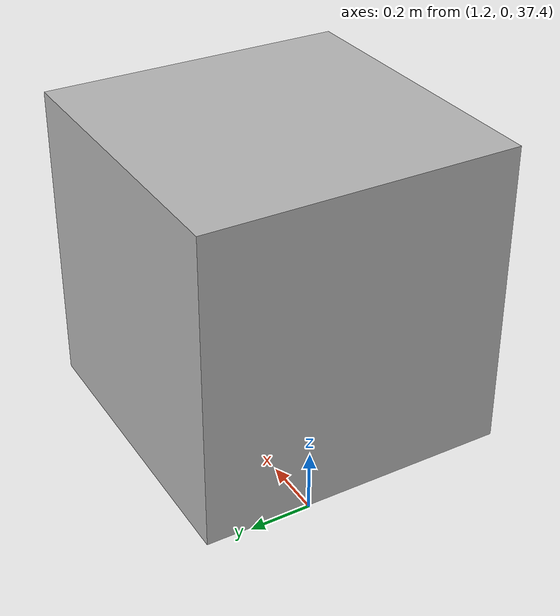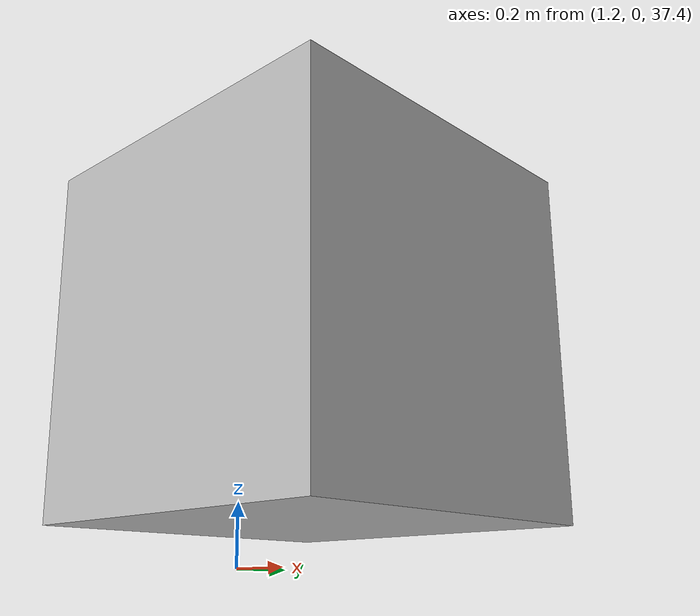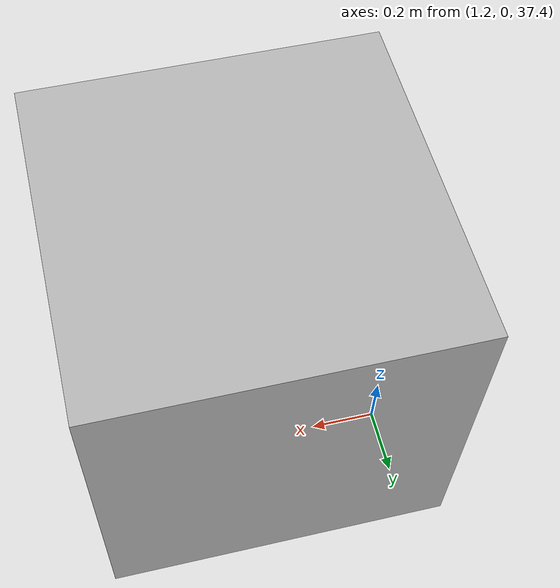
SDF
<?xml version="1.0" ?>/camera
<sdf version="1.5">
  <model name="top_camera">
    <plugin name="ros_camera_1" filename="libROSLogicalCameraPlugin.so">
    </plugin>

    <link name="camera_link">
      <inertial>
        <mass>0.1</mass>
        <inertia>
          <ixx>0.000166667</ixx>
          <iyy>0.000166667</iyy>
          <izz>0.000166667</izz>
        </inertia>
      </inertial>

      <collision name="collision">
      <pose>1.6102 -0.1089 38 3.14 1.57 3.14</pose>
        <geometry>
          <box>
            <size>1 1 1</size>
          </box>
        </geometry>
      </collision>

      <visual name="visual">
      <pose>1.6102 -0.1089 38 3.14 1.57 3.14</pose>
        <geometry>
          <box>
            <size>1 1 1</size>
          </box>
        </geometry>
      </visual>

      <sensor name="logical_camera" type="logical_camera">

        <logical_camera>
          <near>0.2</near>
          <far>2.0</far>
          <horizontal_fov>0.9</horizontal_fov>
          <aspect_ratio>2.0</aspect_ratio>
        </logical_camera>

        <visualize>false</visualize>
        <always_on>true</always_on>
        <update_rate>30</update_rate>
        <topic>camera_1</topic>
      </sensor>

      <sensor name="camera" type="camera">
        <camera>
          <horizontal_fov>0.9</horizontal_fov>
          <image>
            <width>1280</width>
            <height>720</height>
          </image>
          <clip>
            <near>0.1</near>
            <far>100</far>
          </clip>
        </camera>
        <always_on>true</always_on>
        <update_rate>30</update_rate>
        <visualize>true</visualize>
        <plugin name='camera_controller' filename='libgazebo_ros_camera.so'>
            <cameraName>camera</cameraName>
            <eventThreshold>10</eventThreshold>
            <cameraInfoTopicName>camera</cameraInfoTopicName>
        </plugin>
      </sensor>

    </link>

  </model>

</sdf>
